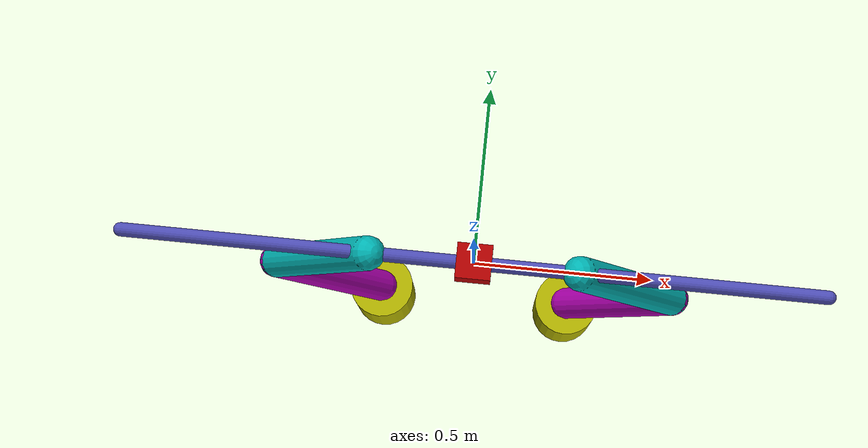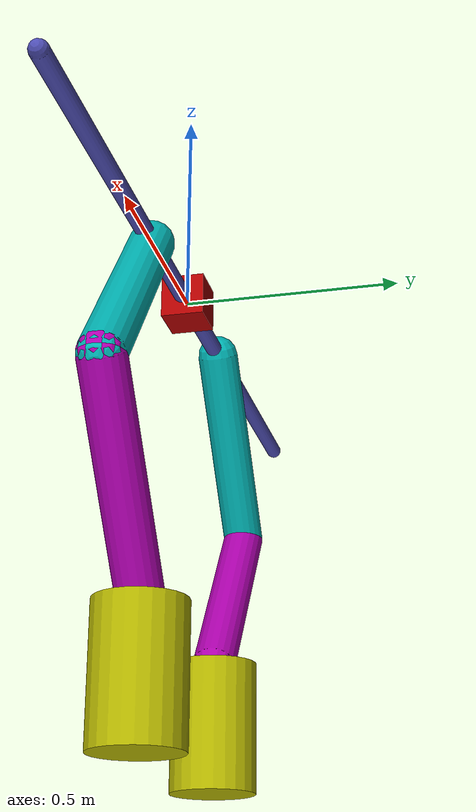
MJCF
<?xml version="1.0" encoding="utf-8"?>

<mujoco model="wiper">
    <!--Infer masses and inertial masses from geometry-->
	<compiler coordinate="local" inertiafromgeom="true"/>

    <!--Global defaults-->
	<default>
		<joint armature="0" damping="0.05" limited="false"/>
		<geom contype="1" friction="1 0.1 0.1" rgba="0.7 0.7 0 1"/>
	</default>

    <!--Simulator options-->
	<option gravity="0 0 -9.81" integrator="RK4" timestep="0.01"/>
	<size nstack="3000"/>

    <!--Define bodies-->
    <worldbody>
        <geom name="bar" pos="0 0 0" quat="0.707 0 0.707 0" rgba="0.3 0.3 0.7 1" size="0.02 1" type="capsule" contype="0"/>

        <!--Box-->
        <body name="box" pos="0 0 0">
            <geom name="box" type="box" size="0.05 0.05 0.05" rgba="0.7 0 0 1"/>
        </body>

        <!--Right wiper-->
        <body name="pole_right1" pos="0.3 0 0">
            <joint axis="0 1 0" name="hinge_right1" pos="0 0 0" type="hinge"/>
            <geom fromto="0 0 0 0.3 0 -0.4" name="pole_right1" rgba="0 0.7 0.7 1" size="0.05" type="capsule"/>
            <body name="pole_right2" pos="0.3 0 -0.4">
                <joint axis="0 1 0" name="hinge_right2" pos="0 0 0" type="hinge"/>
                <geom fromto="0 0 0 -0.3 0 -0.4" name="pole_right2" rgba="0.7 0 0.7 1" size="0.05" type="capsule"/>
            </body>
        </body>
        <!--trial 1-->
        <!--trial 2-->
        <body name="dummy_pole_right1" pos="0.3 0 0">
            <body name="dummy_pole_right2" pos="0.3 0 -0.4">
                <body name="wiper_right" pos="-0.3 0 -0.4">
                    <joint name="wiper_right:xslide" type="slide" axis="-1 0 0" pos="0 0 0" limited="true" range="-0.3 0.3" />
                    <joint name="wiper_right:zslide" type="slide" axis="0 0 1" pos="0 0 0" limited="true" range="-1 1" />
                    <geom fromto="0 0 0 0 0 -0.3" name="wiper_right" rgba="0.7 0.7 0 1" size="0.1" type="cylinder"/>
                </body>
            </body>
        </body>

        <!--Left wiper-->
        <body name="pole_left1" pos="-0.3 0 0">
            <joint axis="0 -1 0" name="hinge_left1" pos="0 0 0" type="hinge"/>
            <geom fromto="0 0 0 -0.3 0 -0.4" name="pole_left1" rgba="0 0.7 0.7 1" size="0.05" type="capsule"/>
            <body name="pole_left2" pos="-0.3 0 -0.4">
                <joint axis="0 -1 0" name="hinge_left2" pos="0 0 0" type="hinge"/>
                <geom fromto="0 0 0 0.3 0 -0.4" name="pole_left2" rgba="0.7 0 0.7 1" size="0.05" type="capsule"/>
            </body>
        </body>
        <!--trial 1-->
        <!--trial 2-->
        <body name="dummy_pole_left1" pos="-0.3 0 0">
            <body name="dummy_pole_left2" pos="-0.3 0 -0.4">
                <body name="wiper_left" pos="0.3 0 -0.4">
                    <joint name="wiper_left:xslide" type="slide" axis="1 0 0" pos="0 0 0" limited="true" range="-0.3 0.3" />
                    <joint name="wiper_left:zslide" type="slide" axis="0 0 1" pos="0 0 0" limited="true" range="-1 1" />
                    <geom fromto="0 0 0 0 0 -0.3" name="wiper_left" rgba="0.7 0.7 0 1" size="0.1" type="cylinder"/>
                </body>
            </body>
        </body>
    </worldbody>

    <!--Define kinematic constraints-->
    <equality>
        <connect body1="wiper_right" body2="pole_right2" anchor="0 0 0" />
        <connect body1="wiper_left" body2="pole_left2" anchor="0 0 0" />
    </equality>

    <!--Define actuators-->
    <actuator>

        <motor joint="wiper_right:xslide" name="wiper_right" ctrlrange="-1000 1000" />
        <motor joint="wiper_left:xslide" name="wiper_left" ctrlrange="-1000 1000" />

    </actuator>
</mujoco>
